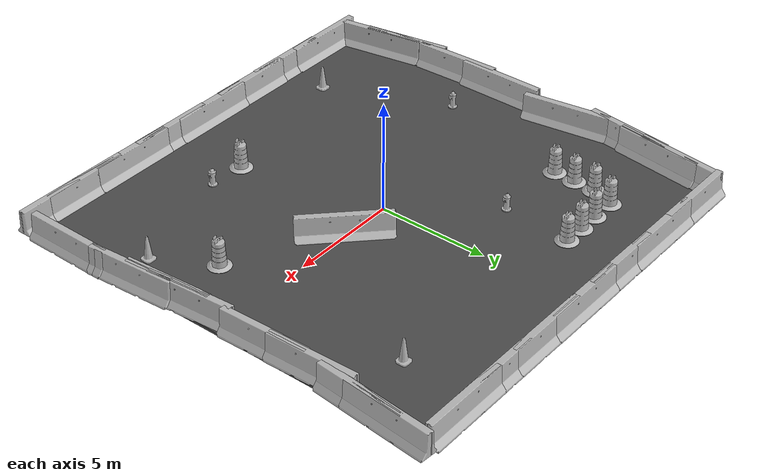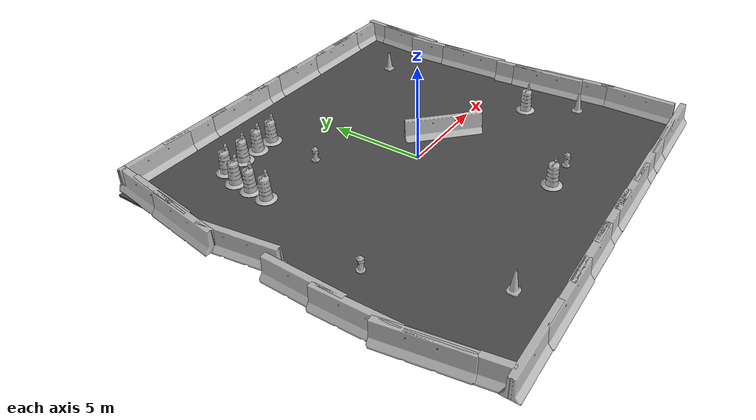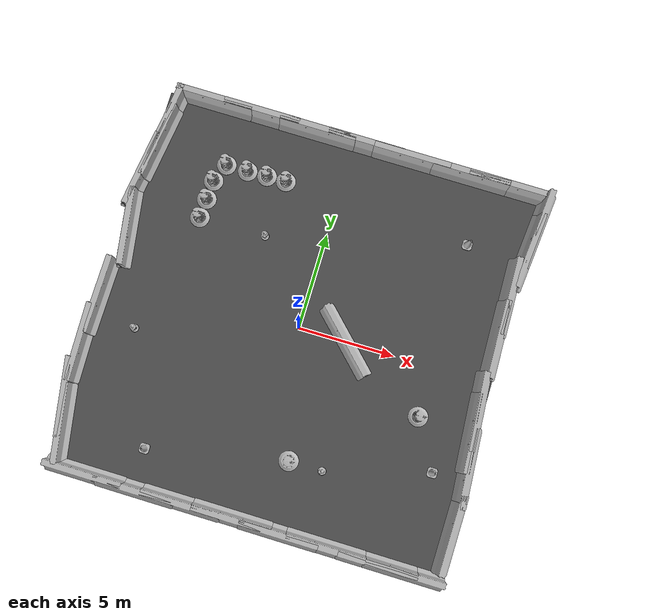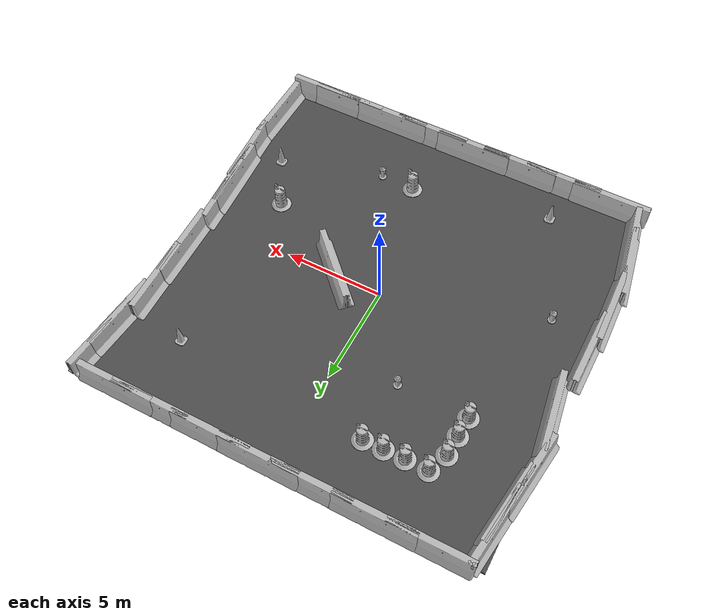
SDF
<sdf version="1.6">
 <world name="default">
  <light name="sun" type="directional">
   <pose>0 0 10 0 -0 0</pose>
   <diffuse>0.8 0.8 0.8 1</diffuse>
   <specular>0.2 0.2 0.2 1</specular>
   <attenuation>
    <range>1000</range>
    <constant>0.9</constant>
    <linear>0.01</linear>
    <quadratic>0.001</quadratic>
   </attenuation>
   <direction>-0.5 0.1 -0.9</direction>
  </light>
  <physics name="default_physics" default="0" type="ode">
   <max_step_size>0.01</max_step_size>
   <real_time_factor>1</real_time_factor>
   <real_time_update_rate>100</real_time_update_rate>
  </physics>
  <scene><ambient>0.4 0.4 0.4 1</ambient><background>0.7 0.7 0.7 1</background><shadows>1</shadows></scene>
  <model name="jersey_barrier">
   <static>1</static>
   <link name="link">
    <visual name="visual">
     <geometry><mesh><uri>model://jersey_barrier/meshes/jersey_barrier.dae</uri></mesh></geometry>
    </visual>
    <collision name="upright">
     <pose>0 0 0.5715 0 -0 0</pose>
     <geometry><box><size>4.06542 0.3063 1.143</size></box></geometry>
    </collision>
    <collision name="base">
     <pose>0 0 0.032258 0 -0 0</pose>
     <geometry><box><size>4.06542 0.8107 0.064516</size></box></geometry>
    </collision>
    <collision name="base2">
     <pose>0 0 0.1 0 -0 0</pose>
     <geometry><box><size>4.06542 0.65 0.1</size></box></geometry>
    </collision>
    <collision name="base3">
     <pose>0 0 0.2 0 -0 0</pose>
     <geometry><box><size>4.06542 0.5 0.1</size></box></geometry>
    </collision>
    <collision name="left-angle">
     <pose>0 -0.224 0.2401 0.9 -0 0</pose>
     <geometry><box><size>4.06542 0.5 0.064516</size></box></geometry>
    </collision>
    <collision name="right-angle">
     <pose>0 0.224 0.2401 -0.9 0 0</pose>
     <geometry><box><size>4.06542 0.5 0.064516</size></box></geometry>
    </collision>
    <velocity_decay><linear>0</linear><angular>0</angular></velocity_decay>
   </link>
   <pose>-8 -10 0 0 -0 0</pose>
  </model>
  <model name="jersey_barrier_0">
   <static>1</static>
   <link name="link">
    <visual name="visual">
     <geometry><mesh><uri>model://jersey_barrier/meshes/jersey_barrier.dae</uri></mesh></geometry>
    </visual>
    <collision name="upright">
     <pose>0 0 0.5715 0 -0 0</pose>
     <geometry><box><size>4.06542 0.3063 1.143</size></box></geometry>
    </collision>
    <collision name="base">
     <pose>0 0 0.032258 0 -0 0</pose>
     <geometry><box><size>4.06542 0.8107 0.064516</size></box></geometry>
    </collision>
    <collision name="base2">
     <pose>0 0 0.1 0 -0 0</pose>
     <geometry><box><size>4.06542 0.65 0.1</size></box></geometry>
    </collision>
    <collision name="base3">
     <pose>0 0 0.2 0 -0 0</pose>
     <geometry><box><size>4.06542 0.5 0.1</size></box></geometry>
    </collision>
    <collision name="left-angle">
     <pose>0 -0.224 0.2401 0.9 -0 0</pose>
     <geometry><box><size>4.06542 0.5 0.064516</size></box></geometry>
    </collision>
    <collision name="right-angle">
     <pose>0 0.224 0.2401 -0.9 0 0</pose>
     <geometry><box><size>4.06542 0.5 0.064516</size></box></geometry>
    </collision>
    <velocity_decay><linear>0</linear><angular>0</angular></velocity_decay>
   </link>
   <pose>-3 -10 0 0 -0 0</pose>
  </model>
  <model name="jersey_barrier_1">
   <static>1</static>
   <link name="link">
    <visual name="visual">
     <geometry><mesh><uri>model://jersey_barrier/meshes/jersey_barrier.dae</uri></mesh></geometry>
    </visual>
    <collision name="upright">
     <pose>0 0 0.5715 0 -0 0</pose>
     <geometry><box><size>4.06542 0.3063 1.143</size></box></geometry>
    </collision>
    <collision name="base">
     <pose>0 0 0.032258 0 -0 0</pose>
     <geometry><box><size>4.06542 0.8107 0.064516</size></box></geometry>
    </collision>
    <collision name="base2">
     <pose>0 0 0.1 0 -0 0</pose>
     <geometry><box><size>4.06542 0.65 0.1</size></box></geometry>
    </collision>
    <collision name="base3">
     <pose>0 0 0.2 0 -0 0</pose>
     <geometry><box><size>4.06542 0.5 0.1</size></box></geometry>
    </collision>
    <collision name="left-angle">
     <pose>0 -0.224 0.2401 0.9 -0 0</pose>
     <geometry><box><size>4.06542 0.5 0.064516</size></box></geometry>
    </collision>
    <collision name="right-angle">
     <pose>0 0.224 0.2401 -0.9 0 0</pose>
     <geometry><box><size>4.06542 0.5 0.064516</size></box></geometry>
    </collision>
    <velocity_decay><linear>0</linear><angular>0</angular></velocity_decay>
   </link>
   <pose>2 -10 0 0 -0 0</pose>
  </model>
  <model name="jersey_barrier_2">
   <static>1</static>
   <link name="link">
    <visual name="visual">
     <geometry><mesh><uri>model://jersey_barrier/meshes/jersey_barrier.dae</uri></mesh></geometry>
    </visual>
    <collision name="upright">
     <pose>0 0 0.5715 0 -0 0</pose>
     <geometry><box><size>4.06542 0.3063 1.143</size></box></geometry>
    </collision>
    <collision name="base">
     <pose>0 0 0.032258 0 -0 0</pose>
     <geometry><box><size>4.06542 0.8107 0.064516</size></box></geometry>
    </collision>
    <collision name="base2">
     <pose>0 0 0.1 0 -0 0</pose>
     <geometry><box><size>4.06542 0.65 0.1</size></box></geometry>
    </collision>
    <collision name="base3">
     <pose>0 0 0.2 0 -0 0</pose>
     <geometry><box><size>4.06542 0.5 0.1</size></box></geometry>
    </collision>
    <collision name="left-angle">
     <pose>0 -0.224 0.2401 0.9 -0 0</pose>
     <geometry><box><size>4.06542 0.5 0.064516</size></box></geometry>
    </collision>
    <collision name="right-angle">
     <pose>0 0.224 0.2401 -0.9 0 0</pose>
     <geometry><box><size>4.06542 0.5 0.064516</size></box></geometry>
    </collision>
    <velocity_decay><linear>0</linear><angular>0</angular></velocity_decay>
   </link>
   <pose>7 -10 0 0 -0 0</pose>
  </model>
  <model name="jersey_barrier_3">
   <static>1</static>
   <link name="link">
    <visual name="visual">
     <geometry><mesh><uri>model://jersey_barrier/meshes/jersey_barrier.dae</uri></mesh></geometry>
    </visual>
    <collision name="upright">
     <pose>0 0 0.5715 0 -0 0</pose>
     <geometry><box><size>4.06542 0.3063 1.143</size></box></geometry>
    </collision>
    <collision name="base">
     <pose>0 0 0.032258 0 -0 0</pose>
     <geometry><box><size>4.06542 0.8107 0.064516</size></box></geometry>
    </collision>
    <collision name="base2">
     <pose>0 0 0.1 0 -0 0</pose>
     <geometry><box><size>4.06542 0.65 0.1</size></box></geometry>
    </collision>
    <collision name="base3">
     <pose>0 0 0.2 0 -0 0</pose>
     <geometry><box><size>4.06542 0.5 0.1</size></box></geometry>
    </collision>
    <collision name="left-angle">
     <pose>0 -0.224 0.2401 0.9 -0 0</pose>
     <geometry><box><size>4.06542 0.5 0.064516</size></box></geometry>
    </collision>
    <collision name="right-angle">
     <pose>0 0.224 0.2401 -0.9 0 0</pose>
     <geometry><box><size>4.06542 0.5 0.064516</size></box></geometry>
    </collision>
    <velocity_decay><linear>0</linear><angular>0</angular></velocity_decay>
   </link>
   <pose>-7.50675 10 0 0 -0 0</pose>
  </model>
  <model name="jersey_barrier_4">
   <static>1</static>
   <link name="link">
    <visual name="visual">
     <geometry><mesh><uri>model://jersey_barrier/meshes/jersey_barrier.dae</uri></mesh></geometry>
    </visual>
    <collision name="upright">
     <pose>0 0 0.5715 0 -0 0</pose>
     <geometry><box><size>4.06542 0.3063 1.143</size></box></geometry>
    </collision>
    <collision name="base">
     <pose>0 0 0.032258 0 -0 0</pose>
     <geometry><box><size>4.06542 0.8107 0.064516</size></box></geometry>
    </collision>
    <collision name="base2">
     <pose>0 0 0.1 0 -0 0</pose>
     <geometry><box><size>4.06542 0.65 0.1</size></box></geometry>
    </collision>
    <collision name="base3">
     <pose>0 0 0.2 0 -0 0</pose>
     <geometry><box><size>4.06542 0.5 0.1</size></box></geometry>
    </collision>
    <collision name="left-angle">
     <pose>0 -0.224 0.2401 0.9 -0 0</pose>
     <geometry><box><size>4.06542 0.5 0.064516</size></box></geometry>
    </collision>
    <collision name="right-angle">
     <pose>0 0.224 0.2401 -0.9 0 0</pose>
     <geometry><box><size>4.06542 0.5 0.064516</size></box></geometry>
    </collision>
    <velocity_decay><linear>0</linear><angular>0</angular></velocity_decay>
   </link>
   <pose>-2 10 0 0 -0 0</pose>
  </model>
  <model name="jersey_barrier_5">
   <static>1</static>
   <link name="link">
    <visual name="visual">
     <geometry><mesh><uri>model://jersey_barrier/meshes/jersey_barrier.dae</uri></mesh></geometry>
    </visual>
    <collision name="upright">
     <pose>0 0 0.5715 0 -0 0</pose>
     <geometry><box><size>4.06542 0.3063 1.143</size></box></geometry>
    </collision>
    <collision name="base">
     <pose>0 0 0.032258 0 -0 0</pose>
     <geometry><box><size>4.06542 0.8107 0.064516</size></box></geometry>
    </collision>
    <collision name="base2">
     <pose>0 0 0.1 0 -0 0</pose>
     <geometry><box><size>4.06542 0.65 0.1</size></box></geometry>
    </collision>
    <collision name="base3">
     <pose>0 0 0.2 0 -0 0</pose>
     <geometry><box><size>4.06542 0.5 0.1</size></box></geometry>
    </collision>
    <collision name="left-angle">
     <pose>0 -0.224 0.2401 0.9 -0 0</pose>
     <geometry><box><size>4.06542 0.5 0.064516</size></box></geometry>
    </collision>
    <collision name="right-angle">
     <pose>0 0.224 0.2401 -0.9 0 0</pose>
     <geometry><box><size>4.06542 0.5 0.064516</size></box></geometry>
    </collision>
    <velocity_decay><linear>0</linear><angular>0</angular></velocity_decay>
   </link>
   <pose>3 10 0 0 -0 0</pose>
  </model>
  <model name="jersey_barrier_6">
   <static>1</static>
   <link name="link">
    <visual name="visual">
     <geometry><mesh><uri>model://jersey_barrier/meshes/jersey_barrier.dae</uri></mesh></geometry>
    </visual>
    <collision name="upright">
     <pose>0 0 0.5715 0 -0 0</pose>
     <geometry><box><size>4.06542 0.3063 1.143</size></box></geometry>
    </collision>
    <collision name="base">
     <pose>0 0 0.032258 0 -0 0</pose>
     <geometry><box><size>4.06542 0.8107 0.064516</size></box></geometry>
    </collision>
    <collision name="base2">
     <pose>0 0 0.1 0 -0 0</pose>
     <geometry><box><size>4.06542 0.65 0.1</size></box></geometry>
    </collision>
    <collision name="base3">
     <pose>0 0 0.2 0 -0 0</pose>
     <geometry><box><size>4.06542 0.5 0.1</size></box></geometry>
    </collision>
    <collision name="left-angle">
     <pose>0 -0.224 0.2401 0.9 -0 0</pose>
     <geometry><box><size>4.06542 0.5 0.064516</size></box></geometry>
    </collision>
    <collision name="right-angle">
     <pose>0 0.224 0.2401 -0.9 0 0</pose>
     <geometry><box><size>4.06542 0.5 0.064516</size></box></geometry>
    </collision>
    <velocity_decay><linear>0</linear><angular>0</angular></velocity_decay>
   </link>
   <pose>8 10 0 0 -0 0</pose>
  </model>
  <model name="jersey_barrier_7">
   <static>1</static>
   <link name="link">
    <visual name="visual">
     <geometry><mesh><uri>model://jersey_barrier/meshes/jersey_barrier.dae</uri></mesh></geometry>
    </visual>
    <collision name="upright">
     <pose>0 0 0.5715 0 -0 0</pose>
     <geometry><box><size>4.06542 0.3063 1.143</size></box></geometry>
    </collision>
    <collision name="base">
     <pose>0 0 0.032258 0 -0 0</pose>
     <geometry><box><size>4.06542 0.8107 0.064516</size></box></geometry>
    </collision>
    <collision name="base2">
     <pose>0 0 0.1 0 -0 0</pose>
     <geometry><box><size>4.06542 0.65 0.1</size></box></geometry>
    </collision>
    <collision name="base3">
     <pose>0 0 0.2 0 -0 0</pose>
     <geometry><box><size>4.06542 0.5 0.1</size></box></geometry>
    </collision>
    <collision name="left-angle">
     <pose>0 -0.224 0.2401 0.9 -0 0</pose>
     <geometry><box><size>4.06542 0.5 0.064516</size></box></geometry>
    </collision>
    <collision name="right-angle">
     <pose>0 0.224 0.2401 -0.9 0 0</pose>
     <geometry><box><size>4.06542 0.5 0.064516</size></box></geometry>
    </collision>
    <velocity_decay><linear>0</linear><angular>0</angular></velocity_decay>
   </link>
   <pose>9.74902 -2.57759 0 0 -0 1.64</pose>
  </model>
  <model name="jersey_barrier_8">
   <static>1</static>
   <link name="link">
    <visual name="visual">
     <geometry><mesh><uri>model://jersey_barrier/meshes/jersey_barrier.dae</uri></mesh></geometry>
    </visual>
    <collision name="upright">
     <pose>0 0 0.5715 0 -0 0</pose>
     <geometry><box><size>4.06542 0.3063 1.143</size></box></geometry>
    </collision>
    <collision name="base">
     <pose>0 0 0.032258 0 -0 0</pose>
     <geometry><box><size>4.06542 0.8107 0.064516</size></box></geometry>
    </collision>
    <collision name="base2">
     <pose>0 0 0.1 0 -0 0</pose>
     <geometry><box><size>4.06542 0.65 0.1</size></box></geometry>
    </collision>
    <collision name="base3">
     <pose>0 0 0.2 0 -0 0</pose>
     <geometry><box><size>4.06542 0.5 0.1</size></box></geometry>
    </collision>
    <collision name="left-angle">
     <pose>0 -0.224 0.2401 0.9 -0 0</pose>
     <geometry><box><size>4.06542 0.5 0.064516</size></box></geometry>
    </collision>
    <collision name="right-angle">
     <pose>0 0.224 0.2401 -0.9 0 0</pose>
     <geometry><box><size>4.06542 0.5 0.064516</size></box></geometry>
    </collision>
    <velocity_decay><linear>0</linear><angular>0</angular></velocity_decay>
   </link>
   <pose>9.70141 2.24369 0 0 -0 1.6</pose>
  </model>
  <model name="jersey_barrier_9">
   <static>1</static>
   <link name="link">
    <visual name="visual">
     <geometry><mesh><uri>model://jersey_barrier/meshes/jersey_barrier.dae</uri></mesh></geometry>
    </visual>
    <collision name="upright">
     <pose>0 0 0.5715 0 -0 0</pose>
     <geometry><box><size>4.06542 0.3063 1.143</size></box></geometry>
    </collision>
    <collision name="base">
     <pose>0 0 0.032258 0 -0 0</pose>
     <geometry><box><size>4.06542 0.8107 0.064516</size></box></geometry>
    </collision>
    <collision name="base2">
     <pose>0 0 0.1 0 -0 0</pose>
     <geometry><box><size>4.06542 0.65 0.1</size></box></geometry>
    </collision>
    <collision name="base3">
     <pose>0 0 0.2 0 -0 0</pose>
     <geometry><box><size>4.06542 0.5 0.1</size></box></geometry>
    </collision>
    <collision name="left-angle">
     <pose>0 -0.224 0.2401 0.9 -0 0</pose>
     <geometry><box><size>4.06542 0.5 0.064516</size></box></geometry>
    </collision>
    <collision name="right-angle">
     <pose>0 0.224 0.2401 -0.9 0 0</pose>
     <geometry><box><size>4.06542 0.5 0.064516</size></box></geometry>
    </collision>
    <velocity_decay><linear>0</linear><angular>0</angular></velocity_decay>
   </link>
   <pose>-10.0607 -6.69856 0 0 0 -1.4</pose>
  </model>
  <model name="jersey_barrier_10">
   <static>1</static>
   <link name="link">
    <visual name="visual">
     <geometry><mesh><uri>model://jersey_barrier/meshes/jersey_barrier.dae</uri></mesh></geometry>
    </visual>
    <collision name="upright">
     <pose>0 0 0.5715 0 -0 0</pose>
     <geometry><box><size>4.06542 0.3063 1.143</size></box></geometry>
    </collision>
    <collision name="base">
     <pose>0 0 0.032258 0 -0 0</pose>
     <geometry><box><size>4.06542 0.8107 0.064516</size></box></geometry>
    </collision>
    <collision name="base2">
     <pose>0 0 0.1 0 -0 0</pose>
     <geometry><box><size>4.06542 0.65 0.1</size></box></geometry>
    </collision>
    <collision name="base3">
     <pose>0 0 0.2 0 -0 0</pose>
     <geometry><box><size>4.06542 0.5 0.1</size></box></geometry>
    </collision>
    <collision name="left-angle">
     <pose>0 -0.224 0.2401 0.9 -0 0</pose>
     <geometry><box><size>4.06542 0.5 0.064516</size></box></geometry>
    </collision>
    <collision name="right-angle">
     <pose>0 0.224 0.2401 -0.9 0 0</pose>
     <geometry><box><size>4.06542 0.5 0.064516</size></box></geometry>
    </collision>
    <velocity_decay><linear>0</linear><angular>0</angular></velocity_decay>
   </link>
   <pose>-10.08 -1.37135 0 0 -0 1.56</pose>
  </model>
  <model name="jersey_barrier_11">
   <static>1</static>
   <link name="link">
    <visual name="visual">
     <geometry><mesh><uri>model://jersey_barrier/meshes/jersey_barrier.dae</uri></mesh></geometry>
    </visual>
    <collision name="upright">
     <pose>0 0 0.5715 0 -0 0</pose>
     <geometry><box><size>4.06542 0.3063 1.143</size></box></geometry>
    </collision>
    <collision name="base">
     <pose>0 0 0.032258 0 -0 0</pose>
     <geometry><box><size>4.06542 0.8107 0.064516</size></box></geometry>
    </collision>
    <collision name="base2">
     <pose>0 0 0.1 0 -0 0</pose>
     <geometry><box><size>4.06542 0.65 0.1</size></box></geometry>
    </collision>
    <collision name="base3">
     <pose>0 0 0.2 0 -0 0</pose>
     <geometry><box><size>4.06542 0.5 0.1</size></box></geometry>
    </collision>
    <collision name="left-angle">
     <pose>0 -0.224 0.2401 0.9 -0 0</pose>
     <geometry><box><size>4.06542 0.5 0.064516</size></box></geometry>
    </collision>
    <collision name="right-angle">
     <pose>0 0.224 0.2401 -0.9 0 0</pose>
     <geometry><box><size>4.06542 0.5 0.064516</size></box></geometry>
    </collision>
    <velocity_decay><linear>0</linear><angular>0</angular></velocity_decay>
   </link>
   <pose>-9.77013 2.34791 0 0 -0 1.72</pose>
  </model>
  <model name="jersey_barrier_12">
   <static>1</static>
   <link name="link">
    <visual name="visual">
     <geometry><mesh><uri>model://jersey_barrier/meshes/jersey_barrier.dae</uri></mesh></geometry>
    </visual>
    <collision name="upright">
     <pose>0 0 0.5715 0 -0 0</pose>
     <geometry><box><size>4.06542 0.3063 1.143</size></box></geometry>
    </collision>
    <collision name="base">
     <pose>0 0 0.032258 0 -0 0</pose>
     <geometry><box><size>4.06542 0.8107 0.064516</size></box></geometry>
    </collision>
    <collision name="base2">
     <pose>0 0 0.1 0 -0 0</pose>
     <geometry><box><size>4.06542 0.65 0.1</size></box></geometry>
    </collision>
    <collision name="base3">
     <pose>0 0 0.2 0 -0 0</pose>
     <geometry><box><size>4.06542 0.5 0.1</size></box></geometry>
    </collision>
    <collision name="left-angle">
     <pose>0 -0.224 0.2401 0.9 -0 0</pose>
     <geometry><box><size>4.06542 0.5 0.064516</size></box></geometry>
    </collision>
    <collision name="right-angle">
     <pose>0 0.224 0.2401 -0.9 0 0</pose>
     <geometry><box><size>4.06542 0.5 0.064516</size></box></geometry>
    </collision>
    <velocity_decay><linear>0</linear><angular>0</angular></velocity_decay>
   </link>
   <pose>10.0879 -7.62159 0 0 -0 1.56</pose>
  </model>
  <model name="jersey_barrier_13">
   <static>1</static>
   <link name="link">
    <visual name="visual">
     <geometry><mesh><uri>model://jersey_barrier/meshes/jersey_barrier.dae</uri></mesh></geometry>
    </visual>
    <collision name="upright">
     <pose>0 0 0.5715 0 -0 0</pose>
     <geometry><box><size>4.06542 0.3063 1.143</size></box></geometry>
    </collision>
    <collision name="base">
     <pose>0 0 0.032258 0 -0 0</pose>
     <geometry><box><size>4.06542 0.8107 0.064516</size></box></geometry>
    </collision>
    <collision name="base2">
     <pose>0 0 0.1 0 -0 0</pose>
     <geometry><box><size>4.06542 0.65 0.1</size></box></geometry>
    </collision>
    <collision name="base3">
     <pose>0 0 0.2 0 -0 0</pose>
     <geometry><box><size>4.06542 0.5 0.1</size></box></geometry>
    </collision>
    <collision name="left-angle">
     <pose>0 -0.224 0.2401 0.9 -0 0</pose>
     <geometry><box><size>4.06542 0.5 0.064516</size></box></geometry>
    </collision>
    <collision name="right-angle">
     <pose>0 0.224 0.2401 -0.9 0 0</pose>
     <geometry><box><size>4.06542 0.5 0.064516</size></box></geometry>
    </collision>
    <velocity_decay><linear>0</linear><angular>0</angular></velocity_decay>
   </link>
   <pose>10 7 0 0 -0 1.48</pose>
  </model>
  <model name="jersey_barrier_14">
   <static>1</static>
   <link name="link">
    <visual name="visual">
     <geometry><mesh><uri>model://jersey_barrier/meshes/jersey_barrier.dae</uri></mesh></geometry>
    </visual>
    <collision name="upright">
     <pose>0 0 0.5715 0 -0 0</pose>
     <geometry><box><size>4.06542 0.3063 1.143</size></box></geometry>
    </collision>
    <collision name="base">
     <pose>0 0 0.032258 0 -0 0</pose>
     <geometry><box><size>4.06542 0.8107 0.064516</size></box></geometry>
    </collision>
    <collision name="base2">
     <pose>0 0 0.1 0 -0 0</pose>
     <geometry><box><size>4.06542 0.65 0.1</size></box></geometry>
    </collision>
    <collision name="base3">
     <pose>0 0 0.2 0 -0 0</pose>
     <geometry><box><size>4.06542 0.5 0.1</size></box></geometry>
    </collision>
    <collision name="left-angle">
     <pose>0 -0.224 0.2401 0.9 -0 0</pose>
     <geometry><box><size>4.06542 0.5 0.064516</size></box></geometry>
    </collision>
    <collision name="right-angle">
     <pose>0 0.224 0.2401 -0.9 0 0</pose>
     <geometry><box><size>4.06542 0.5 0.064516</size></box></geometry>
    </collision>
    <velocity_decay><linear>0</linear><angular>0</angular></velocity_decay>
   </link>
   <pose>-9.64482 7.05946 0 0 -0 1.44</pose>
  </model>
  <model name="fire_hydrant">
   <static>1</static>
   <link name="link">
    <collision name="collision">
     <geometry><mesh><uri>model://fire_hydrant/meshes/fire_hydrant.dae</uri></mesh></geometry>
    </collision>
    <visual name="visual">
     <geometry><mesh><uri>model://fire_hydrant/meshes/fire_hydrant.dae</uri></mesh></geometry>
    </visual>
    <velocity_decay><linear>0</linear><angular>0</angular></velocity_decay>
   </link>
   <pose>3.18024 -6.51118 0 0 -0 0</pose>
  </model>
  <model name="fire_hydrant_0">
   <static>1</static>
   <link name="link">
    <collision name="collision">
     <geometry><mesh><uri>model://fire_hydrant/meshes/fire_hydrant.dae</uri></mesh></geometry>
    </collision>
    <visual name="visual">
     <geometry><mesh><uri>model://fire_hydrant/meshes/fire_hydrant.dae</uri></mesh></geometry>
    </visual>
    <velocity_decay><linear>0</linear><angular>0</angular></velocity_decay>
   </link>
   <pose>-3 4 0 0 -0 0</pose>
  </model>
  <model name="fire_hydrant_1">
   <static>1</static>
   <link name="link">
    <collision name="collision">
     <geometry><mesh><uri>model://fire_hydrant/meshes/fire_hydrant.dae</uri></mesh></geometry>
    </collision>
    <visual name="visual">
     <geometry><mesh><uri>model://fire_hydrant/meshes/fire_hydrant.dae</uri></mesh></geometry>
    </visual>
    <velocity_decay><linear>0</linear><angular>0</angular></velocity_decay>
   </link>
   <pose>-7.90686 -2.41363 0 0 -0 0</pose>
  </model>
  <model name="jersey_barrier_15">
   <static>1</static>
   <link name="link">
    <visual name="visual">
     <geometry><mesh><uri>model://jersey_barrier/meshes/jersey_barrier.dae</uri></mesh></geometry>
    </visual>
    <collision name="upright">
     <pose>0 0 0.5715 0 -0 0</pose>
     <geometry><box><size>4.06542 0.3063 1.143</size></box></geometry>
    </collision>
    <collision name="base">
     <pose>0 0 0.032258 0 -0 0</pose>
     <geometry><box><size>4.06542 0.8107 0.064516</size></box></geometry>
    </collision>
    <collision name="base2">
     <pose>0 0 0.1 0 -0 0</pose>
     <geometry><box><size>4.06542 0.65 0.1</size></box></geometry>
    </collision>
    <collision name="base3">
     <pose>0 0 0.2 0 -0 0</pose>
     <geometry><box><size>4.06542 0.5 0.1</size></box></geometry>
    </collision>
    <collision name="left-angle">
     <pose>0 -0.224 0.2401 0.9 -0 0</pose>
     <geometry><box><size>4.06542 0.5 0.064516</size></box></geometry>
    </collision>
    <collision name="right-angle">
     <pose>0 0.224 0.2401 -0.9 0 0</pose>
     <geometry><box><size>4.06542 0.5 0.064516</size></box></geometry>
    </collision>
    <velocity_decay><linear>0</linear><angular>0</angular></velocity_decay>
   </link>
   <pose>2.45495 0 0 0 -0 2.36</pose>
  </model>
  <model name="Construction Cone">
   <link name="link">
    <collision name="collision">
     <geometry>
      <mesh><scale>10 10 10</scale><uri>model://construction_cone/meshes/construction_cone.dae</uri></mesh>
     </geometry>
    </collision>
    <visual name="visual">
     <geometry>
      <mesh><scale>10 10 10</scale><uri>model://construction_cone/meshes/construction_cone.dae</uri></mesh>
     </geometry>
    </visual>
    <velocity_decay><linear>0</linear><angular>0</angular></velocity_decay>
    <inertial>
     <inertia><ixx>1</ixx><ixy>0</ixy><ixz>0</ixz><iyy>1</iyy><iyz>0</iyz><izz>1</izz></inertia>
     <mass>1</mass>
    </inertial>
   </link>
   <pose>-5.59121 -8 0.050003 1.3e-05 1e-06 9e-06</pose>
   <static>0</static>
  </model>
  <model name="Construction Barrel">
   <link name="link">
    <inertial>
     <pose>0 0 0.4 0 -0 0</pose>
     <mass>500</mass>
     <inertia><ixx>51.2096</ixx><iyy>51.2096</iyy><izz>25</izz><ixy>0</ixy><ixz>0</ixz><iyz>0</iyz></inertia>
    </inertial>
    <collision name="collision">
     <geometry><mesh><uri>model://construction_barrel/meshes/construction_barrel.dae</uri></mesh></geometry>
    </collision>
    <visual name="visual">
     <geometry><mesh><uri>model://construction_barrel/meshes/construction_barrel.dae</uri></mesh></geometry>
    </visual>
    <velocity_decay><linear>0</linear><angular>0</angular></velocity_decay>
   </link>
   <pose>7.00017 -2.54607 0.049893 -0.000103 -0.000429 7.8e-05</pose>
   <static>0</static>
  </model>
  <model name="Construction Cone_0">
   <link name="link">
    <collision name="collision">
     <geometry>
      <mesh><scale>10 10 10</scale><uri>model://construction_cone/meshes/construction_cone.dae</uri></mesh>
     </geometry>
    </collision>
    <visual name="visual">
     <geometry>
      <mesh><scale>10 10 10</scale><uri>model://construction_cone/meshes/construction_cone.dae</uri></mesh>
     </geometry>
    </visual>
    <velocity_decay><linear>0</linear><angular>0</angular></velocity_decay>
    <inertial>
     <inertia><ixx>1</ixx><ixy>0</ixy><ixz>0</ixz><iyy>1</iyy><iyz>0</iyz><izz>1</izz></inertia>
     <mass>1</mass>
    </inertial>
   </link>
   <pose>6.99685 6.55732 0.050003 1.3e-05 1e-06 -0.007003</pose>
   <static>0</static>
  </model>
  <model name="Construction Barrel_0">
   <link name="link">
    <inertial>
     <pose>0 0 0.4 0 -0 0</pose>
     <mass>500</mass>
     <inertia><ixx>51.2096</ixx><iyy>51.2096</iyy><izz>25</izz><ixy>0</ixy><ixz>0</ixz><iyz>0</iyz></inertia>
    </inertial>
    <collision name="collision">
     <geometry><mesh><uri>model://construction_barrel/meshes/construction_barrel.dae</uri></mesh></geometry>
    </collision>
    <visual name="visual">
     <geometry><mesh><uri>model://construction_barrel/meshes/construction_barrel.dae</uri></mesh></geometry>
    </visual>
    <velocity_decay><linear>0</linear><angular>0</angular></velocity_decay>
   </link>
   <pose>1.45238 -6.51171 0.049919 -0.00016 -0.000333 -0.000479</pose>
   <static>0</static>
  </model>
  <model name="asphalt_plane">
   <static>1</static>
   <link name="link">
    <collision name="collision"><geometry><box><size>20 20 0.1</size></box></geometry></collision>
    <visual name="visual">
     <cast_shadows>0</cast_shadows>
     <geometry><box><size>20 20 0.1</size></box></geometry>
     <material>
      <script>
       <uri>model://asphalt_plane/materials/scripts</uri>
       <uri>model://asphalt_plane/materials/textures</uri>
       <name>vrc/asphalt</name>
      </script>
     </material>
    </visual>
    <velocity_decay><linear>0</linear><angular>0</angular></velocity_decay>
   </link>
   <pose>0.076733 -0.110379 0 0 -0 0</pose>
  </model>
  <model name="Construction Barrel_1">
   <link name="link">
    <inertial>
     <pose>0 0 0.4 0 -0 0</pose>
     <mass>500</mass>
     <inertia><ixx>51.2096</ixx><iyy>51.2096</iyy><izz>25</izz><ixy>0</ixy><ixz>0</ixz><iyz>0</iyz></inertia>
    </inertial>
    <collision name="collision">
     <geometry><mesh><uri>model://construction_barrel/meshes/construction_barrel.dae</uri></mesh></geometry>
    </collision>
    <visual name="visual">
     <geometry><mesh><uri>model://construction_barrel/meshes/construction_barrel.dae</uri></mesh></geometry>
    </visual>
    <velocity_decay><linear>0</linear><angular>0</angular></velocity_decay>
   </link>
   <pose>-6.50447 3.98309 0.049875 0.000491 -2e-06 -0.009706</pose>
   <static>0</static>
  </model>
  <model name="Construction Barrel_2">
   <link name="link">
    <inertial>
     <pose>0 0 0.4 0 -0 0</pose>
     <mass>500</mass>
     <inertia><ixx>51.2096</ixx><iyy>51.2096</iyy><izz>25</izz><ixy>0</ixy><ixz>0</ixz><iyz>0</iyz></inertia>
    </inertial>
    <collision name="collision">
     <geometry><mesh><uri>model://construction_barrel/meshes/construction_barrel.dae</uri></mesh></geometry>
    </collision>
    <visual name="visual">
     <geometry><mesh><uri>model://construction_barrel/meshes/construction_barrel.dae</uri></mesh></geometry>
    </visual>
    <velocity_decay><linear>0</linear><angular>0</angular></velocity_decay>
   </link>
   <pose>-6.45053 4.99666 0.049914 -0.000169 -0.000345 0.064699</pose>
   <static>0</static>
  </model>
  <model name="Construction Barrel_3">
   <link name="link">
    <inertial>
     <pose>0 0 0.4 0 -0 0</pose>
     <mass>500</mass>
     <inertia><ixx>51.2096</ixx><iyy>51.2096</iyy><izz>25</izz><ixy>0</ixy><ixz>0</ixz><iyz>0</iyz></inertia>
    </inertial>
    <collision name="collision">
     <geometry><mesh><uri>model://construction_barrel/meshes/construction_barrel.dae</uri></mesh></geometry>
    </collision>
    <visual name="visual">
     <geometry><mesh><uri>model://construction_barrel/meshes/construction_barrel.dae</uri></mesh></geometry>
    </visual>
    <velocity_decay><linear>0</linear><angular>0</angular></velocity_decay>
   </link>
   <pose>-6.40161 6.01144 0.049918 -0.000162 -0.000336 -0.12082</pose>
   <static>0</static>
  </model>
  <model name="Construction Barrel_4">
   <link name="link">
    <inertial>
     <pose>0 0 0.4 0 -0 0</pose>
     <mass>500</mass>
     <inertia><ixx>51.2096</ixx><iyy>51.2096</iyy><izz>25</izz><ixy>0</ixy><ixz>0</ixz><iyz>0</iyz></inertia>
    </inertial>
    <collision name="collision">
     <geometry><mesh><uri>model://construction_barrel/meshes/construction_barrel.dae</uri></mesh></geometry>
    </collision>
    <visual name="visual">
     <geometry><mesh><uri>model://construction_barrel/meshes/construction_barrel.dae</uri></mesh></geometry>
    </visual>
    <velocity_decay><linear>0</linear><angular>0</angular></velocity_decay>
   </link>
   <pose>-6.00584 7.00945 0.049887 0.000434 0.000114 -0.049433</pose>
   <static>0</static>
  </model>
  <model name="Construction Barrel_5">
   <link name="link">
    <inertial>
     <pose>0 0 0.4 0 -0 0</pose>
     <mass>500</mass>
     <inertia><ixx>51.2096</ixx><iyy>51.2096</iyy><izz>25</izz><ixy>0</ixy><ixz>0</ixz><iyz>0</iyz></inertia>
    </inertial>
    <collision name="collision">
     <geometry><mesh><uri>model://construction_barrel/meshes/construction_barrel.dae</uri></mesh></geometry>
    </collision>
    <visual name="visual">
     <geometry><mesh><uri>model://construction_barrel/meshes/construction_barrel.dae</uri></mesh></geometry>
    </visual>
    <velocity_decay><linear>0</linear><angular>0</angular></velocity_decay>
   </link>
   <pose>-4.87519 7.00862 0.049921 -0.000156 -0.000328 0.14606</pose>
   <static>0</static>
  </model>
  <model name="Construction Barrel_6">
   <link name="link">
    <inertial>
     <pose>0 0 0.4 0 -0 0</pose>
     <mass>500</mass>
     <inertia><ixx>51.2096</ixx><iyy>51.2096</iyy><izz>25</izz><ixy>0</ixy><ixz>0</ixz><iyz>0</iyz></inertia>
    </inertial>
    <collision name="collision">
     <geometry><mesh><uri>model://construction_barrel/meshes/construction_barrel.dae</uri></mesh></geometry>
    </collision>
    <visual name="visual">
     <geometry><mesh><uri>model://construction_barrel/meshes/construction_barrel.dae</uri></mesh></geometry>
    </visual>
    <velocity_decay><linear>0</linear><angular>0</angular></velocity_decay>
   </link>
   <pose>-3.84456 7.04098 0.0499 -9.4e-05 -0.000406 0.018884</pose>
   <static>0</static>
  </model>
  <model name="Construction Barrel_7">
   <link name="link">
    <inertial>
     <pose>0 0 0.4 0 -0 0</pose>
     <mass>500</mass>
     <inertia><ixx>51.2096</ixx><iyy>51.2096</iyy><izz>25</izz><ixy>0</ixy><ixz>0</ixz><iyz>0</iyz></inertia>
    </inertial>
    <collision name="collision">
     <geometry><mesh><uri>model://construction_barrel/meshes/construction_barrel.dae</uri></mesh></geometry>
    </collision>
    <visual name="visual">
     <geometry><mesh><uri>model://construction_barrel/meshes/construction_barrel.dae</uri></mesh></geometry>
    </visual>
    <velocity_decay><linear>0</linear><angular>0</angular></velocity_decay>
   </link>
   <pose>-2.82762 7.055 0.0499 -9.4e-05 -0.00041 0.069771</pose>
   <static>0</static>
  </model>
  <model name="Construction Cone_1">
   <link name="link">
    <collision name="collision">
     <geometry>
      <mesh><scale>10 10 10</scale><uri>model://construction_cone/meshes/construction_cone.dae</uri></mesh>
     </geometry>
    </collision>
    <visual name="visual">
     <geometry>
      <mesh><scale>10 10 10</scale><uri>model://construction_cone/meshes/construction_cone.dae</uri></mesh>
     </geometry>
    </visual>
    <velocity_decay><linear>0</linear><angular>0</angular></velocity_decay>
    <inertial>
     <inertia><ixx>1</ixx><ixy>0</ixy><ixz>0</ixz><iyy>1</iyy><iyz>0</iyz><izz>1</izz></inertia>
     <mass>1</mass>
    </inertial>
   </link>
   <pose>8.42887 -5 0.050003 1.3e-05 1e-06 9e-06</pose>
   <static>0</static>
  </model>
  <gravity>0 0 -9.8</gravity>
  <magnetic_field>6e-06 2.3e-05 -4.2e-05</magnetic_field>
  <atmosphere type="adiabatic"/>
  <spherical_coordinates>
   <surface_model>EARTH_WGS84</surface_model>
   <latitude_deg>0</latitude_deg>
   <longitude_deg>0</longitude_deg>
   <elevation>0</elevation>
   <heading_deg>0</heading_deg>
  </spherical_coordinates>
  <model name="jersey_barrier_6_clone">
   <static>1</static>
   <link name="link">
    <visual name="visual">
     <geometry><mesh><uri>model://jersey_barrier/meshes/jersey_barrier.dae</uri></mesh></geometry>
    </visual>
    <collision name="upright">
     <pose>0 0 0.5715 0 -0 0</pose>
     <geometry><box><size>4.06542 0.3063 1.143</size></box></geometry>
    </collision>
    <collision name="base">
     <pose>0 0 0.032258 0 -0 0</pose>
     <geometry><box><size>4.06542 0.8107 0.064516</size></box></geometry>
    </collision>
    <collision name="base2">
     <pose>0 0 0.1 0 -0 0</pose>
     <geometry><box><size>4.06542 0.65 0.1</size></box></geometry>
    </collision>
    <collision name="base3">
     <pose>0 0 0.2 0 -0 0</pose>
     <geometry><box><size>4.06542 0.5 0.1</size></box></geometry>
    </collision>
    <collision name="left-angle">
     <pose>0 -0.224 0.2401 0.9 -0 0</pose>
     <geometry><box><size>4.06542 0.5 0.064516</size></box></geometry>
    </collision>
    <collision name="right-angle">
     <pose>0 0.224 0.2401 -0.9 0 0</pose>
     <geometry><box><size>4.06542 0.5 0.064516</size></box></geometry>
    </collision>
    <velocity_decay><linear>0</linear><angular>0</angular></velocity_decay>
   </link>
   <pose>6.12756 9.99639 0 0 -0 0</pose>
  </model>
  <model name="jersey_barrier_6_clone_0">
   <static>1</static>
   <link name="link">
    <visual name="visual">
     <geometry><mesh><uri>model://jersey_barrier/meshes/jersey_barrier.dae</uri></mesh></geometry>
    </visual>
    <collision name="upright">
     <pose>0 0 0.5715 0 -0 0</pose>
     <geometry><box><size>4.06542 0.3063 1.143</size></box></geometry>
    </collision>
    <collision name="base">
     <pose>0 0 0.032258 0 -0 0</pose>
     <geometry><box><size>4.06542 0.8107 0.064516</size></box></geometry>
    </collision>
    <collision name="base2">
     <pose>0 0 0.1 0 -0 0</pose>
     <geometry><box><size>4.06542 0.65 0.1</size></box></geometry>
    </collision>
    <collision name="base3">
     <pose>0 0 0.2 0 -0 0</pose>
     <geometry><box><size>4.06542 0.5 0.1</size></box></geometry>
    </collision>
    <collision name="left-angle">
     <pose>0 -0.224 0.2401 0.9 -0 0</pose>
     <geometry><box><size>4.06542 0.5 0.064516</size></box></geometry>
    </collision>
    <collision name="right-angle">
     <pose>0 0.224 0.2401 -0.9 0 0</pose>
     <geometry><box><size>4.06542 0.5 0.064516</size></box></geometry>
    </collision>
    <velocity_decay><linear>0</linear><angular>0</angular></velocity_decay>
   </link>
   <pose>0.566249 10.0122 0 0 -0 0</pose>
  </model>
  <model name="jersey_barrier_6_clone_1">
   <static>1</static>
   <link name="link">
    <visual name="visual">
     <geometry><mesh><uri>model://jersey_barrier/meshes/jersey_barrier.dae</uri></mesh></geometry>
    </visual>
    <collision name="upright">
     <pose>0 0 0.5715 0 -0 0</pose>
     <geometry><box><size>4.06542 0.3063 1.143</size></box></geometry>
    </collision>
    <collision name="base">
     <pose>0 0 0.032258 0 -0 0</pose>
     <geometry><box><size>4.06542 0.8107 0.064516</size></box></geometry>
    </collision>
    <collision name="base2">
     <pose>0 0 0.1 0 -0 0</pose>
     <geometry><box><size>4.06542 0.65 0.1</size></box></geometry>
    </collision>
    <collision name="base3">
     <pose>0 0 0.2 0 -0 0</pose>
     <geometry><box><size>4.06542 0.5 0.1</size></box></geometry>
    </collision>
    <collision name="left-angle">
     <pose>0 -0.224 0.2401 0.9 -0 0</pose>
     <geometry><box><size>4.06542 0.5 0.064516</size></box></geometry>
    </collision>
    <collision name="right-angle">
     <pose>0 0.224 0.2401 -0.9 0 0</pose>
     <geometry><box><size>4.06542 0.5 0.064516</size></box></geometry>
    </collision>
    <velocity_decay><linear>0</linear><angular>0</angular></velocity_decay>
   </link>
   <pose>-4.98546 10.0104 0 0 -0 0</pose>
  </model>
  <model name="jersey_barrier_6_clone_2">
   <static>1</static>
   <link name="link">
    <visual name="visual">
     <geometry><mesh><uri>model://jersey_barrier/meshes/jersey_barrier.dae</uri></mesh></geometry>
    </visual>
    <collision name="upright">
     <pose>0 0 0.5715 0 -0 0</pose>
     <geometry><box><size>4.06542 0.3063 1.143</size></box></geometry>
    </collision>
    <collision name="base">
     <pose>0 0 0.032258 0 -0 0</pose>
     <geometry><box><size>4.06542 0.8107 0.064516</size></box></geometry>
    </collision>
    <collision name="base2">
     <pose>0 0 0.1 0 -0 0</pose>
     <geometry><box><size>4.06542 0.65 0.1</size></box></geometry>
    </collision>
    <collision name="base3">
     <pose>0 0 0.2 0 -0 0</pose>
     <geometry><box><size>4.06542 0.5 0.1</size></box></geometry>
    </collision>
    <collision name="left-angle">
     <pose>0 -0.224 0.2401 0.9 -0 0</pose>
     <geometry><box><size>4.06542 0.5 0.064516</size></box></geometry>
    </collision>
    <collision name="right-angle">
     <pose>0 0.224 0.2401 -0.9 0 0</pose>
     <geometry><box><size>4.06542 0.5 0.064516</size></box></geometry>
    </collision>
    <velocity_decay><linear>0</linear><angular>0</angular></velocity_decay>
   </link>
   <pose>8.36545 -10.0024 0 0 -0 0</pose>
  </model>
  <model name="jersey_barrier_6_clone_3">
   <static>1</static>
   <link name="link">
    <visual name="visual">
     <geometry><mesh><uri>model://jersey_barrier/meshes/jersey_barrier.dae</uri></mesh></geometry>
    </visual>
    <collision name="upright">
     <pose>0 0 0.5715 0 -0 0</pose>
     <geometry><box><size>4.06542 0.3063 1.143</size></box></geometry>
    </collision>
    <collision name="base">
     <pose>0 0 0.032258 0 -0 0</pose>
     <geometry><box><size>4.06542 0.8107 0.064516</size></box></geometry>
    </collision>
    <collision name="base2">
     <pose>0 0 0.1 0 -0 0</pose>
     <geometry><box><size>4.06542 0.65 0.1</size></box></geometry>
    </collision>
    <collision name="base3">
     <pose>0 0 0.2 0 -0 0</pose>
     <geometry><box><size>4.06542 0.5 0.1</size></box></geometry>
    </collision>
    <collision name="left-angle">
     <pose>0 -0.224 0.2401 0.9 -0 0</pose>
     <geometry><box><size>4.06542 0.5 0.064516</size></box></geometry>
    </collision>
    <collision name="right-angle">
     <pose>0 0.224 0.2401 -0.9 0 0</pose>
     <geometry><box><size>4.06542 0.5 0.064516</size></box></geometry>
    </collision>
    <velocity_decay><linear>0</linear><angular>0</angular></velocity_decay>
   </link>
   <pose>4.36946 -9.9865 0 0 -0 0</pose>
  </model>
  <model name="jersey_barrier_6_clone_4">
   <static>1</static>
   <link name="link">
    <visual name="visual">
     <geometry><mesh><uri>model://jersey_barrier/meshes/jersey_barrier.dae</uri></mesh></geometry>
    </visual>
    <collision name="upright">
     <pose>0 0 0.5715 0 -0 0</pose>
     <geometry><box><size>4.06542 0.3063 1.143</size></box></geometry>
    </collision>
    <collision name="base">
     <pose>0 0 0.032258 0 -0 0</pose>
     <geometry><box><size>4.06542 0.8107 0.064516</size></box></geometry>
    </collision>
    <collision name="base2">
     <pose>0 0 0.1 0 -0 0</pose>
     <geometry><box><size>4.06542 0.65 0.1</size></box></geometry>
    </collision>
    <collision name="base3">
     <pose>0 0 0.2 0 -0 0</pose>
     <geometry><box><size>4.06542 0.5 0.1</size></box></geometry>
    </collision>
    <collision name="left-angle">
     <pose>0 -0.224 0.2401 0.9 -0 0</pose>
     <geometry><box><size>4.06542 0.5 0.064516</size></box></geometry>
    </collision>
    <collision name="right-angle">
     <pose>0 0.224 0.2401 -0.9 0 0</pose>
     <geometry><box><size>4.06542 0.5 0.064516</size></box></geometry>
    </collision>
    <velocity_decay><linear>0</linear><angular>0</angular></velocity_decay>
   </link>
   <pose>-0.415996 -9.97308 0 0 -0 0</pose>
  </model>
  <model name="jersey_barrier_6_clone_5">
   <static>1</static>
   <link name="link">
    <visual name="visual">
     <geometry><mesh><uri>model://jersey_barrier/meshes/jersey_barrier.dae</uri></mesh></geometry>
    </visual>
    <collision name="upright">
     <pose>0 0 0.5715 0 -0 0</pose>
     <geometry><box><size>4.06542 0.3063 1.143</size></box></geometry>
    </collision>
    <collision name="base">
     <pose>0 0 0.032258 0 -0 0</pose>
     <geometry><box><size>4.06542 0.8107 0.064516</size></box></geometry>
    </collision>
    <collision name="base2">
     <pose>0 0 0.1 0 -0 0</pose>
     <geometry><box><size>4.06542 0.65 0.1</size></box></geometry>
    </collision>
    <collision name="base3">
     <pose>0 0 0.2 0 -0 0</pose>
     <geometry><box><size>4.06542 0.5 0.1</size></box></geometry>
    </collision>
    <collision name="left-angle">
     <pose>0 -0.224 0.2401 0.9 -0 0</pose>
     <geometry><box><size>4.06542 0.5 0.064516</size></box></geometry>
    </collision>
    <collision name="right-angle">
     <pose>0 0.224 0.2401 -0.9 0 0</pose>
     <geometry><box><size>4.06542 0.5 0.064516</size></box></geometry>
    </collision>
    <velocity_decay><linear>0</linear><angular>0</angular></velocity_decay>
   </link>
   <pose>-5.39578 -10.0326 0 0 -0 0</pose>
  </model>
  <model name="jersey_barrier_9_clone">
   <static>1</static>
   <link name="link">
    <visual name="visual">
     <geometry><mesh><uri>model://jersey_barrier/meshes/jersey_barrier.dae</uri></mesh></geometry>
    </visual>
    <collision name="upright">
     <pose>0 0 0.5715 0 -0 0</pose>
     <geometry><box><size>4.06542 0.3063 1.143</size></box></geometry>
    </collision>
    <collision name="base">
     <pose>0 0 0.032258 0 -0 0</pose>
     <geometry><box><size>4.06542 0.8107 0.064516</size></box></geometry>
    </collision>
    <collision name="base2">
     <pose>0 0 0.1 0 -0 0</pose>
     <geometry><box><size>4.06542 0.65 0.1</size></box></geometry>
    </collision>
    <collision name="base3">
     <pose>0 0 0.2 0 -0 0</pose>
     <geometry><box><size>4.06542 0.5 0.1</size></box></geometry>
    </collision>
    <collision name="left-angle">
     <pose>0 -0.224 0.2401 0.9 -0 0</pose>
     <geometry><box><size>4.06542 0.5 0.064516</size></box></geometry>
    </collision>
    <collision name="right-angle">
     <pose>0 0.224 0.2401 -0.9 0 0</pose>
     <geometry><box><size>4.06542 0.5 0.064516</size></box></geometry>
    </collision>
    <velocity_decay><linear>0</linear><angular>0</angular></velocity_decay>
   </link>
   <pose>-9.81292 -7.97912 0 0 0 -1.4</pose>
  </model>
  <model name="jersey_barrier_14_clone">
   <static>1</static>
   <link name="link">
    <visual name="visual">
     <geometry><mesh><uri>model://jersey_barrier/meshes/jersey_barrier.dae</uri></mesh></geometry>
    </visual>
    <collision name="upright">
     <pose>0 0 0.5715 0 -0 0</pose>
     <geometry><box><size>4.06542 0.3063 1.143</size></box></geometry>
    </collision>
    <collision name="base">
     <pose>0 0 0.032258 0 -0 0</pose>
     <geometry><box><size>4.06542 0.8107 0.064516</size></box></geometry>
    </collision>
    <collision name="base2">
     <pose>0 0 0.1 0 -0 0</pose>
     <geometry><box><size>4.06542 0.65 0.1</size></box></geometry>
    </collision>
    <collision name="base3">
     <pose>0 0 0.2 0 -0 0</pose>
     <geometry><box><size>4.06542 0.5 0.1</size></box></geometry>
    </collision>
    <collision name="left-angle">
     <pose>0 -0.224 0.2401 0.9 -0 0</pose>
     <geometry><box><size>4.06542 0.5 0.064516</size></box></geometry>
    </collision>
    <collision name="right-angle">
     <pose>0 0.224 0.2401 -0.9 0 0</pose>
     <geometry><box><size>4.06542 0.5 0.064516</size></box></geometry>
    </collision>
    <velocity_decay><linear>0</linear><angular>0</angular></velocity_decay>
   </link>
   <pose>-9.54927 8.14563 0 0 -0 1.44</pose>
  </model>
  <model name="jersey_barrier_14_clone_0">
   <static>1</static>
   <link name="link">
    <visual name="visual">
     <geometry><mesh><uri>model://jersey_barrier/meshes/jersey_barrier.dae</uri></mesh></geometry>
    </visual>
    <collision name="upright">
     <pose>0 0 0.5715 0 -0 0</pose>
     <geometry><box><size>4.06542 0.3063 1.143</size></box></geometry>
    </collision>
    <collision name="base">
     <pose>0 0 0.032258 0 -0 0</pose>
     <geometry><box><size>4.06542 0.8107 0.064516</size></box></geometry>
    </collision>
    <collision name="base2">
     <pose>0 0 0.1 0 -0 0</pose>
     <geometry><box><size>4.06542 0.65 0.1</size></box></geometry>
    </collision>
    <collision name="base3">
     <pose>0 0 0.2 0 -0 0</pose>
     <geometry><box><size>4.06542 0.5 0.1</size></box></geometry>
    </collision>
    <collision name="left-angle">
     <pose>0 -0.224 0.2401 0.9 -0 0</pose>
     <geometry><box><size>4.06542 0.5 0.064516</size></box></geometry>
    </collision>
    <collision name="right-angle">
     <pose>0 0.224 0.2401 -0.9 0 0</pose>
     <geometry><box><size>4.06542 0.5 0.064516</size></box></geometry>
    </collision>
    <velocity_decay><linear>0</linear><angular>0</angular></velocity_decay>
   </link>
   <pose>-9.94568 5.38765 0 0 -0 1.44</pose>
  </model>
  <model name="jersey_barrier_13_clone">
   <static>1</static>
   <link name="link">
    <visual name="visual">
     <geometry><mesh><uri>model://jersey_barrier/meshes/jersey_barrier.dae</uri></mesh></geometry>
    </visual>
    <collision name="upright">
     <pose>0 0 0.5715 0 -0 0</pose>
     <geometry><box><size>4.06542 0.3063 1.143</size></box></geometry>
    </collision>
    <collision name="base">
     <pose>0 0 0.032258 0 -0 0</pose>
     <geometry><box><size>4.06542 0.8107 0.064516</size></box></geometry>
    </collision>
    <collision name="base2">
     <pose>0 0 0.1 0 -0 0</pose>
     <geometry><box><size>4.06542 0.65 0.1</size></box></geometry>
    </collision>
    <collision name="base3">
     <pose>0 0 0.2 0 -0 0</pose>
     <geometry><box><size>4.06542 0.5 0.1</size></box></geometry>
    </collision>
    <collision name="left-angle">
     <pose>0 -0.224 0.2401 0.9 -0 0</pose>
     <geometry><box><size>4.06542 0.5 0.064516</size></box></geometry>
    </collision>
    <collision name="right-angle">
     <pose>0 0.224 0.2401 -0.9 0 0</pose>
     <geometry><box><size>4.06542 0.5 0.064516</size></box></geometry>
    </collision>
    <velocity_decay><linear>0</linear><angular>0</angular></velocity_decay>
   </link>
   <pose>10.1204 8.2941 0 0 -0 1.48</pose>
  </model>
  <model name="jersey_barrier_8_clone_0">
   <static>1</static>
   <link name="link">
    <visual name="visual">
     <geometry><mesh><uri>model://jersey_barrier/meshes/jersey_barrier.dae</uri></mesh></geometry>
    </visual>
    <collision name="upright">
     <pose>0 0 0.5715 0 -0 0</pose>
     <geometry><box><size>4.06542 0.3063 1.143</size></box></geometry>
    </collision>
    <collision name="base">
     <pose>0 0 0.032258 0 -0 0</pose>
     <geometry><box><size>4.06542 0.8107 0.064516</size></box></geometry>
    </collision>
    <collision name="base2">
     <pose>0 0 0.1 0 -0 0</pose>
     <geometry><box><size>4.06542 0.65 0.1</size></box></geometry>
    </collision>
    <collision name="base3">
     <pose>0 0 0.2 0 -0 0</pose>
     <geometry><box><size>4.06542 0.5 0.1</size></box></geometry>
    </collision>
    <collision name="left-angle">
     <pose>0 -0.224 0.2401 0.9 -0 0</pose>
     <geometry><box><size>4.06542 0.5 0.064516</size></box></geometry>
    </collision>
    <collision name="right-angle">
     <pose>0 0.224 0.2401 -0.9 0 0</pose>
     <geometry><box><size>4.06542 0.5 0.064516</size></box></geometry>
    </collision>
    <velocity_decay><linear>0</linear><angular>0</angular></velocity_decay>
   </link>
   <pose>-10.2006 -3.90138 0 0 -0 1.6</pose>
  </model>
  <model name="jersey_barrier_8_clone">
   <static>1</static>
   <link name="link">
    <visual name="visual">
     <geometry><mesh><uri>model://jersey_barrier/meshes/jersey_barrier.dae</uri></mesh></geometry>
    </visual>
    <collision name="upright">
     <pose>0 0 0.5715 0 -0 0</pose>
     <geometry><box><size>4.06542 0.3063 1.143</size></box></geometry>
    </collision>
    <collision name="base">
     <pose>0 0 0.032258 0 -0 0</pose>
     <geometry><box><size>4.06542 0.8107 0.064516</size></box></geometry>
    </collision>
    <collision name="base2">
     <pose>0 0 0.1 0 -0 0</pose>
     <geometry><box><size>4.06542 0.65 0.1</size></box></geometry>
    </collision>
    <collision name="base3">
     <pose>0 0 0.2 0 -0 0</pose>
     <geometry><box><size>4.06542 0.5 0.1</size></box></geometry>
    </collision>
    <collision name="left-angle">
     <pose>0 -0.224 0.2401 0.9 -0 0</pose>
     <geometry><box><size>4.06542 0.5 0.064516</size></box></geometry>
    </collision>
    <collision name="right-angle">
     <pose>0 0.224 0.2401 -0.9 0 0</pose>
     <geometry><box><size>4.06542 0.5 0.064516</size></box></geometry>
    </collision>
    <velocity_decay><linear>0</linear><angular>0</angular></velocity_decay>
   </link>
   <pose>9.67677 4.48752 0 0 -0 1.6</pose>
  </model>
  <model name="jersey_barrier_7_clone">
   <static>1</static>
   <link name="link">
    <visual name="visual">
     <geometry><mesh><uri>model://jersey_barrier/meshes/jersey_barrier.dae</uri></mesh></geometry>
    </visual>
    <collision name="upright">
     <pose>0 0 0.5715 0 -0 0</pose>
     <geometry><box><size>4.06542 0.3063 1.143</size></box></geometry>
    </collision>
    <collision name="base">
     <pose>0 0 0.032258 0 -0 0</pose>
     <geometry><box><size>4.06542 0.8107 0.064516</size></box></geometry>
    </collision>
    <collision name="base2">
     <pose>0 0 0.1 0 -0 0</pose>
     <geometry><box><size>4.06542 0.65 0.1</size></box></geometry>
    </collision>
    <collision name="base3">
     <pose>0 0 0.2 0 -0 0</pose>
     <geometry><box><size>4.06542 0.5 0.1</size></box></geometry>
    </collision>
    <collision name="left-angle">
     <pose>0 -0.224 0.2401 0.9 -0 0</pose>
     <geometry><box><size>4.06542 0.5 0.064516</size></box></geometry>
    </collision>
    <collision name="right-angle">
     <pose>0 0.224 0.2401 -0.9 0 0</pose>
     <geometry><box><size>4.06542 0.5 0.064516</size></box></geometry>
    </collision>
    <velocity_decay><linear>0</linear><angular>0</angular></velocity_decay>
   </link>
   <pose>9.70399 -1.48009 0 0 -0 1.64</pose>
  </model>
  <model name="jersey_barrier_7_clone_0">
   <static>1</static>
   <link name="link">
    <visual name="visual">
     <geometry><mesh><uri>model://jersey_barrier/meshes/jersey_barrier.dae</uri></mesh></geometry>
    </visual>
    <collision name="upright">
     <pose>0 0 0.5715 0 -0 0</pose>
     <geometry><box><size>4.06542 0.3063 1.143</size></box></geometry>
    </collision>
    <collision name="base">
     <pose>0 0 0.032258 0 -0 0</pose>
     <geometry><box><size>4.06542 0.8107 0.064516</size></box></geometry>
    </collision>
    <collision name="base2">
     <pose>0 0 0.1 0 -0 0</pose>
     <geometry><box><size>4.06542 0.65 0.1</size></box></geometry>
    </collision>
    <collision name="base3">
     <pose>0 0 0.2 0 -0 0</pose>
     <geometry><box><size>4.06542 0.5 0.1</size></box></geometry>
    </collision>
    <collision name="left-angle">
     <pose>0 -0.224 0.2401 0.9 -0 0</pose>
     <geometry><box><size>4.06542 0.5 0.064516</size></box></geometry>
    </collision>
    <collision name="right-angle">
     <pose>0 0.224 0.2401 -0.9 0 0</pose>
     <geometry><box><size>4.06542 0.5 0.064516</size></box></geometry>
    </collision>
    <velocity_decay><linear>0</linear><angular>0</angular></velocity_decay>
   </link>
   <pose>9.98846 -4.31556 0 0 -0 1.64</pose>
  </model>
  <light name="user_directional_light_0" type="directional">
   <pose>24.3182 -38.8426 1 0 -0 0</pose>
   <diffuse>0.5 0.5 0.5 1</diffuse>
   <specular>0.1 0.1 0.1 1</specular>
   <direction>0.1 0.1 -0.9</direction>
   <attenuation>
    <range>20</range>
    <constant>0.5</constant>
    <linear>0.01</linear>
    <quadratic>0.001</quadratic>
   </attenuation>
  </light>
 </world>
</sdf>
